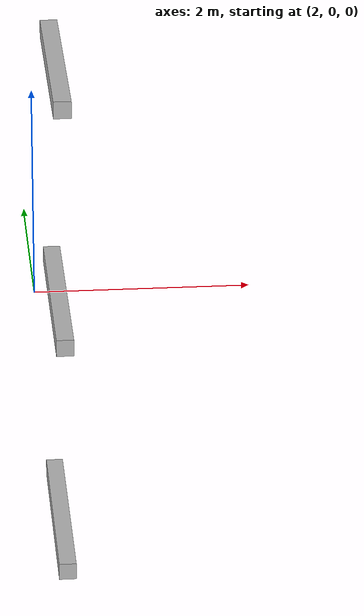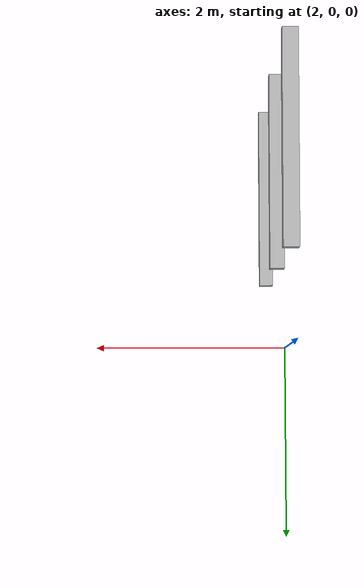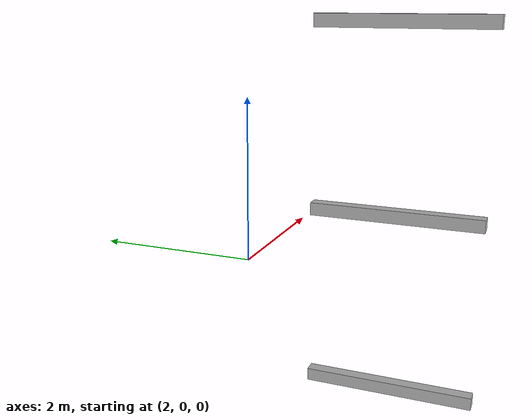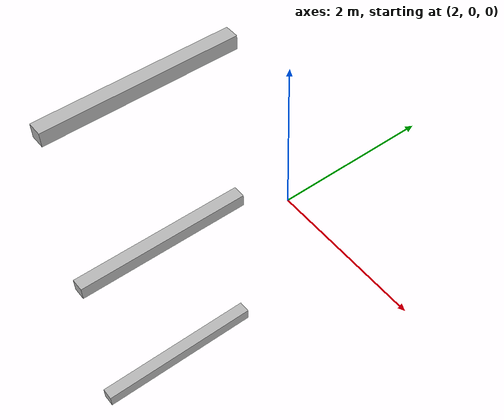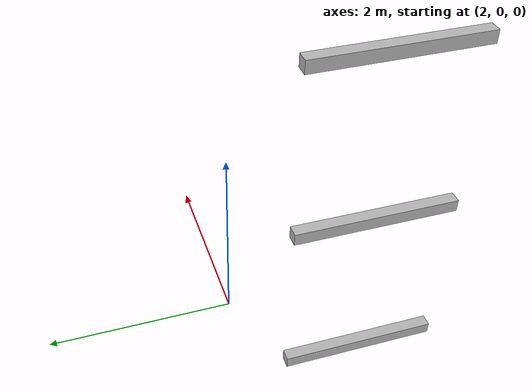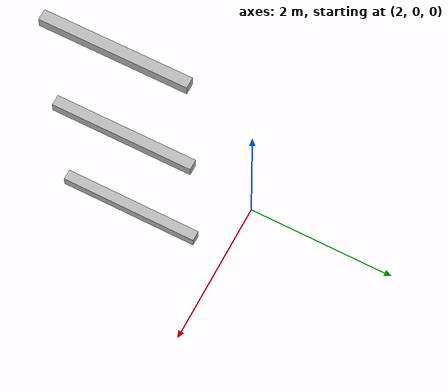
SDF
<sdf version="1.7">
 <world name="default">
  <model name="orthogonal_747_2.000.15_TS">
   <static>1</static>
   <link name="y_link_0_1_4">
    <inertial>
     <mass>1</mass>
     <inertia>
      <ixx>0.166667</ixx>
      <ixy>0</ixy>
      <ixz>0</ixz>
      <iyy>0.166667</iyy>
      <iyz>0</iyz>
      <izz>0.166667</izz>
     </inertia>
    </inertial>
    <pose>8.6 3.225 1.075 0 -0 0</pose>
    <visual name="visual_0">
     <laser_retro>253</laser_retro>
     <geometry><box><size>0.15 1e-06 0.15</size></box></geometry>
     <material>
      <script><name>Gazebo/Grey</name><uri>file://media/materials/scripts/gazebo.material</uri></script>
      <shader type="pixel"><normal_map>__default__</normal_map></shader>
      <ambient>0.678 0.498 0.659 1</ambient>
      <diffuse>0.7 0.7 0.7 1</diffuse>
      <specular>0.01 0.01 0.01 1</specular>
      <emissive>0 0 0 1</emissive>
     </material>
     <pose>0 -1 0 0 -0 0</pose>
     <transparency>1</transparency>
    </visual>
    <visual name="visual_1">
     <laser_retro>254</laser_retro>
     <geometry><box><size>0.15 1e-06 0.15</size></box></geometry>
     <material>
      <script><name>Gazebo/Grey</name><uri>file://media/materials/scripts/gazebo.material</uri></script>
      <shader type="pixel"><normal_map>__default__</normal_map></shader>
      <ambient>0.447 0.624 0.812 1</ambient>
      <diffuse>0.7 0.7 0.7 1</diffuse>
      <specular>0.01 0.01 0.01 1</specular>
      <emissive>0 0 0 1</emissive>
     </material>
     <pose>0 1 0 0 -0 0</pose>
     <transparency>1</transparency>
    </visual>
    <visual name="visual_2">
     <laser_retro>255</laser_retro>
     <geometry><box><size>0.15 2 1e-06</size></box></geometry>
     <material>
      <script><name>Gazebo/Grey</name><uri>file://media/materials/scripts/gazebo.material</uri></script>
      <shader type="pixel"><normal_map>__default__</normal_map></shader>
      <ambient>0.988 0.686 0.243 1</ambient>
      <diffuse>0.7 0.7 0.7 1</diffuse>
      <specular>0.01 0.01 0.01 1</specular>
      <emissive>0 0 0 1</emissive>
     </material>
     <pose>0 0 -0.075 0 -0 0</pose>
     <transparency>1</transparency>
    </visual>
    <visual name="visual_3">
     <laser_retro>256</laser_retro>
     <geometry><box><size>1e-06 2 0.15</size></box></geometry>
     <material>
      <script><name>Gazebo/Grey</name><uri>file://media/materials/scripts/gazebo.material</uri></script>
      <shader type="pixel"><normal_map>__default__</normal_map></shader>
      <ambient>0.988 0.914 0.31 1</ambient>
      <diffuse>0.7 0.7 0.7 1</diffuse>
      <specular>0.01 0.01 0.01 1</specular>
      <emissive>0 0 0 1</emissive>
     </material>
     <pose>0.075 0 0 0 -0 0</pose>
     <transparency>1</transparency>
    </visual>
    <visual name="visual_4">
     <laser_retro>257</laser_retro>
     <geometry><box><size>0.15 2 1e-06</size></box></geometry>
     <material>
      <script><name>Gazebo/Grey</name><uri>file://media/materials/scripts/gazebo.material</uri></script>
      <shader type="pixel"><normal_map>__default__</normal_map></shader>
      <ambient>0.937 0.161 0.161 1</ambient>
      <diffuse>0.7 0.7 0.7 1</diffuse>
      <specular>0.01 0.01 0.01 1</specular>
      <emissive>0 0 0 1</emissive>
     </material>
     <pose>0 0 0.075 0 -0 0</pose>
     <transparency>1</transparency>
    </visual>
    <visual name="visual_5">
     <laser_retro>258</laser_retro>
     <geometry><box><size>1e-06 2 0.15</size></box></geometry>
     <material>
      <script><name>Gazebo/Grey</name><uri>file://media/materials/scripts/gazebo.material</uri></script>
      <shader type="pixel"><normal_map>__default__</normal_map></shader>
      <ambient>0.541 0.886 0.204 1</ambient>
      <diffuse>0.7 0.7 0.7 1</diffuse>
      <specular>0.01 0.01 0.01 1</specular>
      <emissive>0 0 0 1</emissive>
     </material>
     <pose>-0.075 0 0 0 -0 0</pose>
     <transparency>1</transparency>
    </visual>
    <visual name="visual_texture">
     <geometry><box><size>0.149985 1.9998 0.149985</size></box></geometry>
     <material>
      <script>
       <uri>model://BASE_MODELS/simple_block_v2_textured/materials/scripts</uri>
       <uri>model://BASE_MODELS/simple_block_v2_textured/materials/textures</uri>
       <name>metal</name>
      </script>
     </material>
     <laser_retro>259</laser_retro>
    </visual>
    <collision name="collision">
     <geometry><box><size>0.15 2 0.15</size></box></geometry>
     <surface>
      <friction>
       <ode><mu>1</mu><mu2>1</mu2><fdir1>0 0 0</fdir1><slip1>0</slip1><slip2>0</slip2></ode>
       <torsional>
        <coefficient>1</coefficient>
        <patch_radius>0</patch_radius>
        <surface_radius>0</surface_radius>
        <use_patch_radius>1</use_patch_radius>
        <ode><slip>0</slip></ode>
       </torsional>
      </friction>
      <bounce><restitution_coefficient>0</restitution_coefficient><threshold>1e+06</threshold></bounce>
      <contact>
       <collide_without_contact>0</collide_without_contact>
       <collide_without_contact_bitmask>1</collide_without_contact_bitmask>
       <collide_bitmask>1</collide_bitmask>
       <ode>
        <soft_cfm>0</soft_cfm>
        <soft_erp>0.2</soft_erp>
        <kp>1e+13</kp>
        <kd>1</kd>
        <max_vel>0.01</max_vel>
        <min_depth>0</min_depth>
       </ode>
       <bullet>
        <split_impulse>1</split_impulse>
        <split_impulse_penetration_threshold>-0.01</split_impulse_penetration_threshold>
        <soft_cfm>0</soft_cfm>
        <soft_erp>0.2</soft_erp>
        <kp>1e+13</kp>
        <kd>1</kd>
       </bullet>
      </contact>
     </surface>
    </collision>
   </link>
   <link name="y_link_1_1_4">
    <inertial>
     <mass>1</mass>
     <inertia>
      <ixx>0.166667</ixx>
      <ixy>0</ixy>
      <ixz>0</ixz>
      <iyy>0.166667</iyy>
      <iyz>0</iyz>
      <izz>0.166667</izz>
     </inertia>
    </inertial>
    <pose>8.6 3.225 3.225 0 -0 0</pose>
    <visual name="visual_0">
     <laser_retro>1065</laser_retro>
     <geometry><box><size>0.15 1e-06 0.15</size></box></geometry>
     <material>
      <script><name>Gazebo/Grey</name><uri>file://media/materials/scripts/gazebo.material</uri></script>
      <shader type="pixel"><normal_map>__default__</normal_map></shader>
      <ambient>0.678 0.498 0.659 1</ambient>
      <diffuse>0.7 0.7 0.7 1</diffuse>
      <specular>0.01 0.01 0.01 1</specular>
      <emissive>0 0 0 1</emissive>
     </material>
     <pose>0 -1 0 0 -0 0</pose>
     <transparency>1</transparency>
    </visual>
    <visual name="visual_1">
     <laser_retro>1066</laser_retro>
     <geometry><box><size>0.15 1e-06 0.15</size></box></geometry>
     <material>
      <script><name>Gazebo/Grey</name><uri>file://media/materials/scripts/gazebo.material</uri></script>
      <shader type="pixel"><normal_map>__default__</normal_map></shader>
      <ambient>0.447 0.624 0.812 1</ambient>
      <diffuse>0.7 0.7 0.7 1</diffuse>
      <specular>0.01 0.01 0.01 1</specular>
      <emissive>0 0 0 1</emissive>
     </material>
     <pose>0 1 0 0 -0 0</pose>
     <transparency>1</transparency>
    </visual>
    <visual name="visual_2">
     <laser_retro>1067</laser_retro>
     <geometry><box><size>0.15 2 1e-06</size></box></geometry>
     <material>
      <script><name>Gazebo/Grey</name><uri>file://media/materials/scripts/gazebo.material</uri></script>
      <shader type="pixel"><normal_map>__default__</normal_map></shader>
      <ambient>0.988 0.686 0.243 1</ambient>
      <diffuse>0.7 0.7 0.7 1</diffuse>
      <specular>0.01 0.01 0.01 1</specular>
      <emissive>0 0 0 1</emissive>
     </material>
     <pose>0 0 -0.075 0 -0 0</pose>
     <transparency>1</transparency>
    </visual>
    <visual name="visual_3">
     <laser_retro>1068</laser_retro>
     <geometry><box><size>1e-06 2 0.15</size></box></geometry>
     <material>
      <script><name>Gazebo/Grey</name><uri>file://media/materials/scripts/gazebo.material</uri></script>
      <shader type="pixel"><normal_map>__default__</normal_map></shader>
      <ambient>0.988 0.914 0.31 1</ambient>
      <diffuse>0.7 0.7 0.7 1</diffuse>
      <specular>0.01 0.01 0.01 1</specular>
      <emissive>0 0 0 1</emissive>
     </material>
     <pose>0.075 0 0 0 -0 0</pose>
     <transparency>1</transparency>
    </visual>
    <visual name="visual_4">
     <laser_retro>1069</laser_retro>
     <geometry><box><size>0.15 2 1e-06</size></box></geometry>
     <material>
      <script><name>Gazebo/Grey</name><uri>file://media/materials/scripts/gazebo.material</uri></script>
      <shader type="pixel"><normal_map>__default__</normal_map></shader>
      <ambient>0.937 0.161 0.161 1</ambient>
      <diffuse>0.7 0.7 0.7 1</diffuse>
      <specular>0.01 0.01 0.01 1</specular>
      <emissive>0 0 0 1</emissive>
     </material>
     <pose>0 0 0.075 0 -0 0</pose>
     <transparency>1</transparency>
    </visual>
    <visual name="visual_5">
     <laser_retro>1070</laser_retro>
     <geometry><box><size>1e-06 2 0.15</size></box></geometry>
     <material>
      <script><name>Gazebo/Grey</name><uri>file://media/materials/scripts/gazebo.material</uri></script>
      <shader type="pixel"><normal_map>__default__</normal_map></shader>
      <ambient>0.541 0.886 0.204 1</ambient>
      <diffuse>0.7 0.7 0.7 1</diffuse>
      <specular>0.01 0.01 0.01 1</specular>
      <emissive>0 0 0 1</emissive>
     </material>
     <pose>-0.075 0 0 0 -0 0</pose>
     <transparency>1</transparency>
    </visual>
    <visual name="visual_texture">
     <geometry><box><size>0.149985 1.9998 0.149985</size></box></geometry>
     <material>
      <script>
       <uri>model://BASE_MODELS/simple_block_v2_textured/materials/scripts</uri>
       <uri>model://BASE_MODELS/simple_block_v2_textured/materials/textures</uri>
       <name>metal</name>
      </script>
     </material>
     <laser_retro>1071</laser_retro>
    </visual>
    <collision name="collision">
     <geometry><box><size>0.15 2 0.15</size></box></geometry>
     <surface>
      <friction>
       <ode><mu>1</mu><mu2>1</mu2><fdir1>0 0 0</fdir1><slip1>0</slip1><slip2>0</slip2></ode>
       <torsional>
        <coefficient>1</coefficient>
        <patch_radius>0</patch_radius>
        <surface_radius>0</surface_radius>
        <use_patch_radius>1</use_patch_radius>
        <ode><slip>0</slip></ode>
       </torsional>
      </friction>
      <bounce><restitution_coefficient>0</restitution_coefficient><threshold>1e+06</threshold></bounce>
      <contact>
       <collide_without_contact>0</collide_without_contact>
       <collide_without_contact_bitmask>1</collide_without_contact_bitmask>
       <collide_bitmask>1</collide_bitmask>
       <ode>
        <soft_cfm>0</soft_cfm>
        <soft_erp>0.2</soft_erp>
        <kp>1e+13</kp>
        <kd>1</kd>
        <max_vel>0.01</max_vel>
        <min_depth>0</min_depth>
       </ode>
       <bullet>
        <split_impulse>1</split_impulse>
        <split_impulse_penetration_threshold>-0.01</split_impulse_penetration_threshold>
        <soft_cfm>0</soft_cfm>
        <soft_erp>0.2</soft_erp>
        <kp>1e+13</kp>
        <kd>1</kd>
       </bullet>
      </contact>
     </surface>
    </collision>
   </link>
   <link name="y_link_2_1_4">
    <inertial>
     <mass>1</mass>
     <inertia>
      <ixx>0.166667</ixx>
      <ixy>0</ixy>
      <ixz>0</ixz>
      <iyy>0.166667</iyy>
      <iyz>0</iyz>
      <izz>0.166667</izz>
     </inertia>
    </inertial>
    <pose>8.6 3.225 5.375 0 -0 0</pose>
    <visual name="visual_0">
     <laser_retro>1968</laser_retro>
     <geometry><box><size>0.15 1e-06 0.15</size></box></geometry>
     <material>
      <script><name>Gazebo/Grey</name><uri>file://media/materials/scripts/gazebo.material</uri></script>
      <shader type="pixel"><normal_map>__default__</normal_map></shader>
      <ambient>0.678 0.498 0.659 1</ambient>
      <diffuse>0.7 0.7 0.7 1</diffuse>
      <specular>0.01 0.01 0.01 1</specular>
      <emissive>0 0 0 1</emissive>
     </material>
     <pose>0 -1 0 0 -0 0</pose>
     <transparency>1</transparency>
    </visual>
    <visual name="visual_1">
     <laser_retro>1969</laser_retro>
     <geometry><box><size>0.15 1e-06 0.15</size></box></geometry>
     <material>
      <script><name>Gazebo/Grey</name><uri>file://media/materials/scripts/gazebo.material</uri></script>
      <shader type="pixel"><normal_map>__default__</normal_map></shader>
      <ambient>0.447 0.624 0.812 1</ambient>
      <diffuse>0.7 0.7 0.7 1</diffuse>
      <specular>0.01 0.01 0.01 1</specular>
      <emissive>0 0 0 1</emissive>
     </material>
     <pose>0 1 0 0 -0 0</pose>
     <transparency>1</transparency>
    </visual>
    <visual name="visual_2">
     <laser_retro>1970</laser_retro>
     <geometry><box><size>0.15 2 1e-06</size></box></geometry>
     <material>
      <script><name>Gazebo/Grey</name><uri>file://media/materials/scripts/gazebo.material</uri></script>
      <shader type="pixel"><normal_map>__default__</normal_map></shader>
      <ambient>0.988 0.686 0.243 1</ambient>
      <diffuse>0.7 0.7 0.7 1</diffuse>
      <specular>0.01 0.01 0.01 1</specular>
      <emissive>0 0 0 1</emissive>
     </material>
     <pose>0 0 -0.075 0 -0 0</pose>
     <transparency>1</transparency>
    </visual>
    <visual name="visual_3">
     <laser_retro>1971</laser_retro>
     <geometry><box><size>1e-06 2 0.15</size></box></geometry>
     <material>
      <script><name>Gazebo/Grey</name><uri>file://media/materials/scripts/gazebo.material</uri></script>
      <shader type="pixel"><normal_map>__default__</normal_map></shader>
      <ambient>0.988 0.914 0.31 1</ambient>
      <diffuse>0.7 0.7 0.7 1</diffuse>
      <specular>0.01 0.01 0.01 1</specular>
      <emissive>0 0 0 1</emissive>
     </material>
     <pose>0.075 0 0 0 -0 0</pose>
     <transparency>1</transparency>
    </visual>
    <visual name="visual_4">
     <laser_retro>1972</laser_retro>
     <geometry><box><size>0.15 2 1e-06</size></box></geometry>
     <material>
      <script><name>Gazebo/Grey</name><uri>file://media/materials/scripts/gazebo.material</uri></script>
      <shader type="pixel"><normal_map>__default__</normal_map></shader>
      <ambient>0.937 0.161 0.161 1</ambient>
      <diffuse>0.7 0.7 0.7 1</diffuse>
      <specular>0.01 0.01 0.01 1</specular>
      <emissive>0 0 0 1</emissive>
     </material>
     <pose>0 0 0.075 0 -0 0</pose>
     <transparency>1</transparency>
    </visual>
    <visual name="visual_5">
     <laser_retro>1973</laser_retro>
     <geometry><box><size>1e-06 2 0.15</size></box></geometry>
     <material>
      <script><name>Gazebo/Grey</name><uri>file://media/materials/scripts/gazebo.material</uri></script>
      <shader type="pixel"><normal_map>__default__</normal_map></shader>
      <ambient>0.541 0.886 0.204 1</ambient>
      <diffuse>0.7 0.7 0.7 1</diffuse>
      <specular>0.01 0.01 0.01 1</specular>
      <emissive>0 0 0 1</emissive>
     </material>
     <pose>-0.075 0 0 0 -0 0</pose>
     <transparency>1</transparency>
    </visual>
    <visual name="visual_texture">
     <geometry><box><size>0.149985 1.9998 0.149985</size></box></geometry>
     <material>
      <script>
       <uri>model://BASE_MODELS/simple_block_v2_textured/materials/scripts</uri>
       <uri>model://BASE_MODELS/simple_block_v2_textured/materials/textures</uri>
       <name>metal</name>
      </script>
     </material>
     <laser_retro>1974</laser_retro>
    </visual>
    <collision name="collision">
     <geometry><box><size>0.15 2 0.15</size></box></geometry>
     <surface>
      <friction>
       <ode><mu>1</mu><mu2>1</mu2><fdir1>0 0 0</fdir1><slip1>0</slip1><slip2>0</slip2></ode>
       <torsional>
        <coefficient>1</coefficient>
        <patch_radius>0</patch_radius>
        <surface_radius>0</surface_radius>
        <use_patch_radius>1</use_patch_radius>
        <ode><slip>0</slip></ode>
       </torsional>
      </friction>
      <bounce><restitution_coefficient>0</restitution_coefficient><threshold>1e+06</threshold></bounce>
      <contact>
       <collide_without_contact>0</collide_without_contact>
       <collide_without_contact_bitmask>1</collide_without_contact_bitmask>
       <collide_bitmask>1</collide_bitmask>
       <ode>
        <soft_cfm>0</soft_cfm>
        <soft_erp>0.2</soft_erp>
        <kp>1e+13</kp>
        <kd>1</kd>
        <max_vel>0.01</max_vel>
        <min_depth>0</min_depth>
       </ode>
       <bullet>
        <split_impulse>1</split_impulse>
        <split_impulse_penetration_threshold>-0.01</split_impulse_penetration_threshold>
        <soft_cfm>0</soft_cfm>
        <soft_erp>0.2</soft_erp>
        <kp>1e+13</kp>
        <kd>1</kd>
       </bullet>
      </contact>
     </surface>
    </collision>
   </link>
   <pose>-6.47624 -5 -2.5 0 -0 0</pose>
  </model>
 </world>
</sdf>
